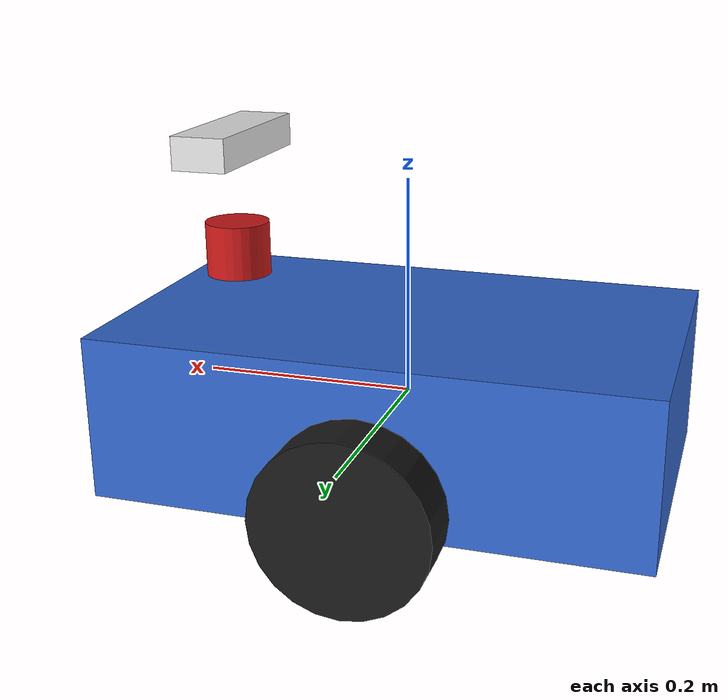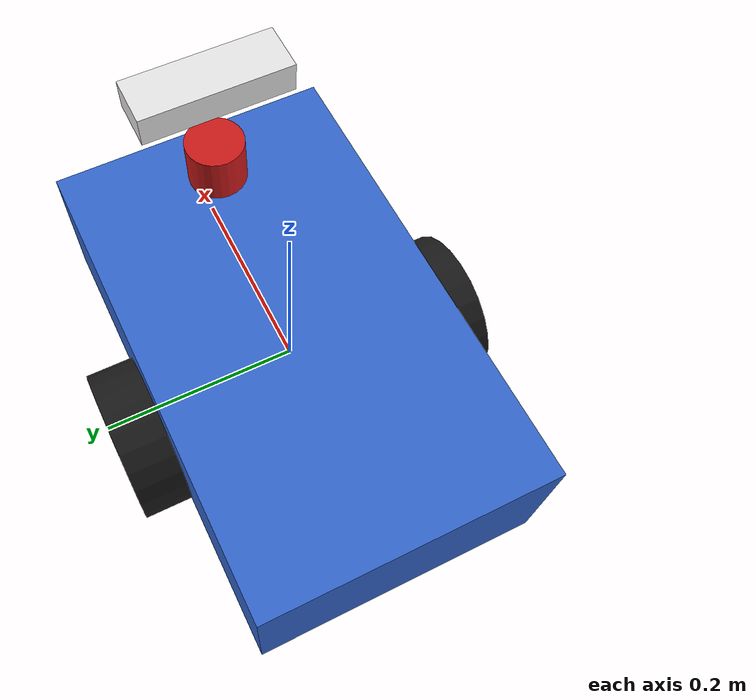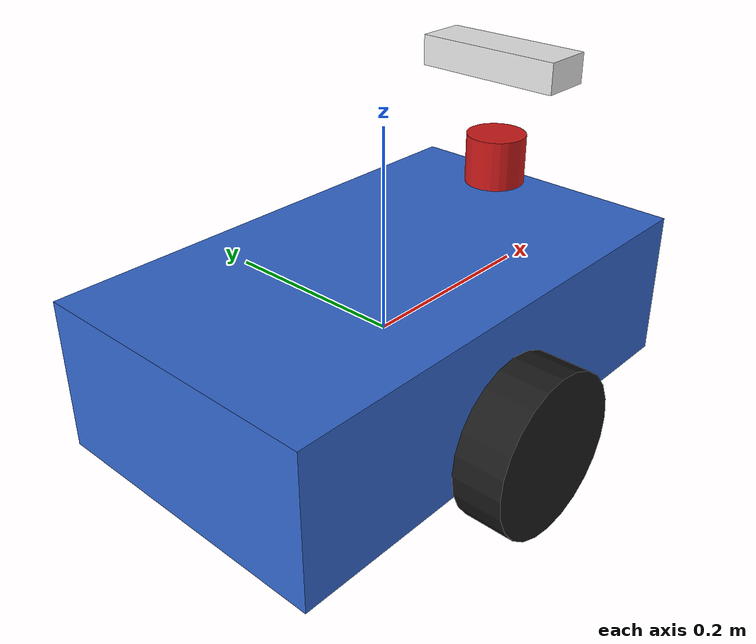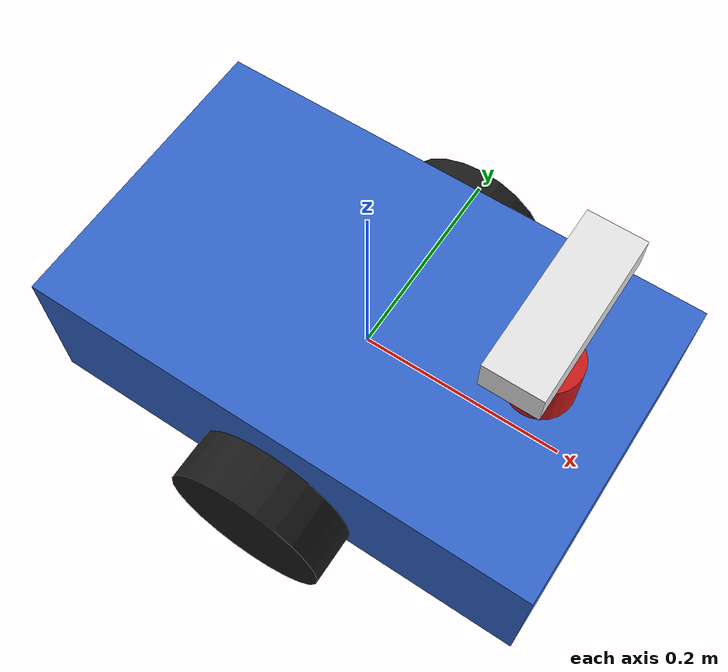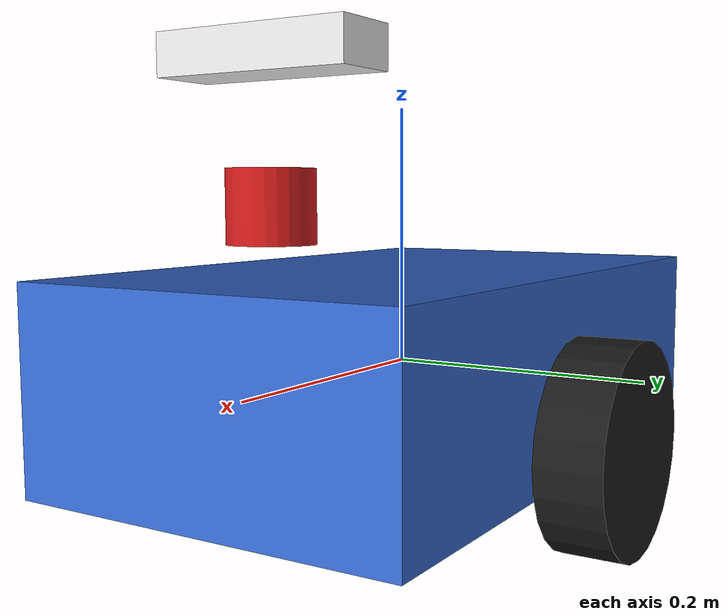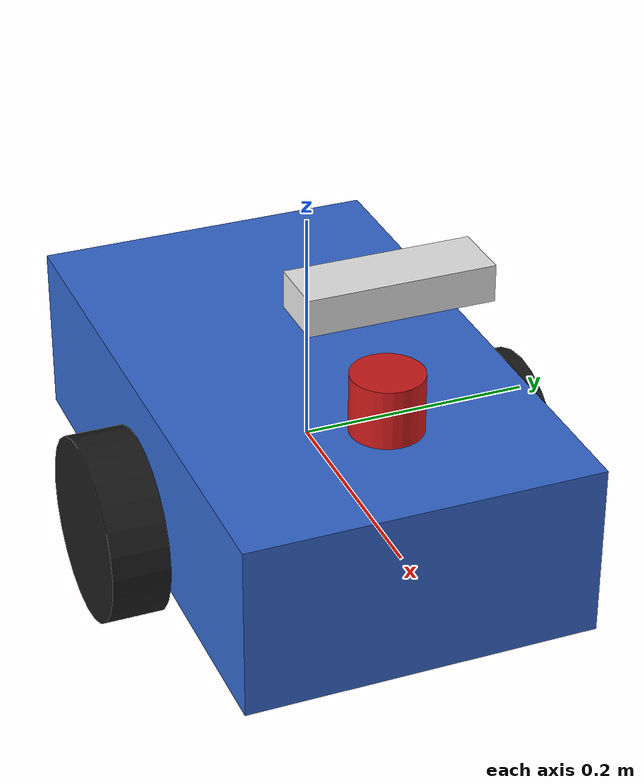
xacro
<?xml version="1.0"?>
<robot xmlns:xacro="http://www.ros.org/wiki/xacro" name="my_robot">
  <xacro:property name="base_length" value="0.5"/>
  <xacro:property name="base_width" value="0.3"/>
  <xacro:property name="base_height" value="0.15"/>
  <xacro:property name="wheel_radius" value="0.08"/>
  <xacro:property name="wheel_width" value="0.05"/>
  <xacro:property name="wheel_zoff" value="0.05"/>
  <xacro:property name="caster_radius" value="0.08"/>

  <material name="blue"><color rgba="0.2 0.4 0.8 1.0"/></material>
  <material name="black"><color rgba="0.1 0.1 0.1 1.0"/></material>
  <material name="white"><color rgba="0.9 0.9 0.9 1.0"/></material>
  <material name="red"><color rgba="0.8 0.1 0.1 1.0"/></material>
  <material name="grey"><color rgba="0.5 0.5 0.5 1.0"/></material>

  <link name="base_link">
    <visual><geometry><box size="${base_length} ${base_width} ${base_height}"/></geometry><material name="blue"/></visual>
    <collision><geometry><box size="${base_length} ${base_width} ${base_height}"/></geometry></collision>
    <inertial><mass value="15.0"/><inertia ixx="0.1" ixy="0.0" ixz="0.0" iyy="0.15" iyz="0.0" izz="0.2"/></inertial>
  </link>

  <!-- 驱动轮：绕 Y 轴旋转 -->
  <xacro:macro name="wheel" params="prefix reflect">
    <link name="${prefix}_wheel">
      <visual><origin xyz="0 0 0" rpy="${pi/2} 0 0"/><geometry><cylinder radius="${wheel_radius}" length="${wheel_width}"/></geometry><material name="black"/></visual>
      <collision><origin xyz="0 0 0" rpy="${pi/2} 0 0"/><geometry><cylinder radius="${wheel_radius}" length="${wheel_width}"/></geometry></collision>
      <inertial><origin xyz="0 0 0" rpy="${pi/2} 0 0"/><mass value="1.5"/><inertia ixx="0.005" ixy="0.0" ixz="0.0" iyy="0.005" iyz="0.0" izz="0.01"/></inertial>
    </link>
    <joint name="${prefix}_wheel_joint" type="continuous">
      <parent link="base_link"/><child link="${prefix}_wheel"/>
      <origin xyz="0 ${reflect*(base_width/2+0.025)} -${wheel_zoff}" rpy="0 0 0"/>
      <axis xyz="0 1 0"/>
    </joint>
    <gazebo reference="${prefix}_wheel"><mu1>1.0</mu1><mu2>1.0</mu2><material>Gazebo/Black</material></gazebo>
  </xacro:macro>
  <xacro:wheel prefix="left" reflect="1"/>
  <xacro:wheel prefix="right" reflect="-1"/>

  <!-- 万向轮 -->
  <link name="caster_wheel">
    <visual><geometry><sphere radius="${caster_radius}"/></geometry><material name="grey"/></visual>
    <collision><geometry><sphere radius="${caster_radius}"/></geometry></collision>
    <inertial><mass value="0.5"/><inertia ixx="0.001" ixy="0.0" ixz="0.0" iyy="0.001" iyz="0.0" izz="0.001"/></inertial>
  </link>
  <joint name="caster_joint" type="fixed">
    <parent link="base_link"/><child link="caster_wheel"/>
    <origin xyz="-${base_length/3} 0 -${wheel_zoff}" rpy="0 0 0"/>
  </joint>
  <gazebo reference="caster_wheel"><mu1>0.1</mu1><mu2>0.1</mu2></gazebo>

  <!-- LiDAR -->
  <link name="laser_link">
    <visual><geometry><cylinder radius="0.03" length="0.05"/></geometry><material name="red"/></visual>
    <collision><geometry><cylinder radius="0.03" length="0.05"/></geometry></collision>
    <inertial><mass value="0.1"/><inertia ixx="0.0001" ixy="0.0" ixz="0.0" iyy="0.0001" iyz="0.0" izz="0.0001"/></inertial>
  </link>
  <joint name="laser_joint" type="fixed">
    <parent link="base_link"/><child link="laser_link"/>
    <origin xyz="${base_length/3} 0 ${base_height/2+0.05}" rpy="0 0 0"/>
  </joint>
  <gazebo reference="laser_link">
    <sensor name="laser" type="ray">
      <always_on>true</always_on><visualize>true</visualize><update_rate>20</update_rate>
      <ray><scan><horizontal><samples>360</samples><resolution>1</resolution><min_angle>-3.14159</min_angle><max_angle>3.14159</max_angle></horizontal></scan><range><min>0.12</min><max>12.0</max><resolution>0.015</resolution></range></ray>
      <plugin name="laser_plugin" filename="libgazebo_ros_ray_sensor.so">
        <ros><remapping>~/out:=scan</remapping></ros>
        <output_type>sensor_msgs/LaserScan</output_type><frame_name>laser_link</frame_name>
      </plugin>
    </sensor>
  </gazebo>

  <!-- RGB-D 相机 -->
  <link name="camera_link">
    <visual><geometry><box size="0.05 0.15 0.03"/></geometry><material name="white"/></visual>
    <collision><geometry><box size="0.05 0.15 0.03"/></geometry></collision>
    <inertial><mass value="0.2"/><inertia ixx="0.001" ixy="0.0" ixz="0.0" iyy="0.001" iyz="0.0" izz="0.001"/></inertial>
  </link>
  <joint name="camera_joint" type="fixed">
    <parent link="base_link"/><child link="camera_link"/>
    <origin xyz="${base_length/3} 0 ${base_height/2+0.15}" rpy="0 0 0"/>
  </joint>
  <gazebo reference="camera_link">
    <sensor name="depth_camera" type="depth">
      <always_on>true</always_on><visualize>true</visualize><update_rate>30</update_rate>
      <camera><horizontal_fov>1.047</horizontal_fov><image><width>320</width><height>240</height><format>R8G8B8</format></image><clip><near>0.05</near><far>10.0</far></clip></camera>
      <plugin name="depth_plugin" filename="libgazebo_ros_camera.so">
        <imageTopicName>color/image_raw</imageTopicName>
        <cameraInfoTopicName>color/camera_info</cameraInfoTopicName>
        <depthImageTopicName>depth/image_rect_raw</depthImageTopicName>
        <depthImageCameraInfoTopicName>depth/camera_info</depthImageCameraInfoTopicName>
        <pointCloudTopicName>depth/color/points</pointCloudTopicName>
        <frameName>camera_link</frameName>
        <distortionK1>0</distortionK1><distortionK2>0</distortionK2><distortionK3>0</distortionK3>
        <distortionT1>0</distortionT1><distortionT2>0</distortionT2>
      </plugin>
    </sensor>
  </gazebo>

  <!-- IMU：修复！origin 设为 0 0 0，与 base_link 完全重合 -->
  <link name="imu_link">
    <visual><geometry><box size="0.02 0.02 0.02"/></geometry><material name="grey"/></visual>
    <inertial><mass value="0.01"/><inertia ixx="0.000001" ixy="0.0" ixz="0.0" iyy="0.000001" iyz="0.0" izz="0.000001"/></inertial>
  </link>
  <joint name="imu_joint" type="fixed">
    <parent link="base_link"/><child link="imu_link"/>
    <!-- 关键修复：xyz 全为 0，确保 IMU 与 base_link 重合 -->
    <origin xyz="0 0 0" rpy="0 0 0"/>
  </joint>
  <gazebo reference="imu_link">
    <sensor name="imu_sensor" type="imu">
      <always_on>true</always_on><visualize>false</visualize><update_rate>100</update_rate>
      <imu>
        <angular_velocity><x><noise type="gaussian"><mean>0.0</mean><stddev>0.01</stddev></noise></x><y><noise type="gaussian"><mean>0.0</mean><stddev>0.01</stddev></noise></y><z><noise type="gaussian"><mean>0.0</mean><stddev>0.01</stddev></noise></z></angular_velocity>
        <linear_acceleration><x><noise type="gaussian"><mean>0.0</mean><stddev>0.05</stddev></noise></x><y><noise type="gaussian"><mean>0.0</mean><stddev>0.05</stddev></noise></y><z><noise type="gaussian"><mean>0.0</mean><stddev>0.05</stddev></noise></z></linear_acceleration>
      </imu>
      <plugin name="imu_plugin" filename="libgazebo_ros_imu_sensor.so">
        <ros><remapping>~/out:=imu/data</remapping></ros><frame_name>imu_link</frame_name>
      </plugin>
    </sensor>
  </gazebo>

  <!-- 差速驱动插件 -->
  <gazebo>
    <plugin name="diff_drive" filename="libgazebo_ros_diff_drive.so">
      <ros><namespace>/</namespace><remapping>cmd_vel:=cmd_vel</remapping><remapping>odom:=odom</remapping></ros>
      <update_rate>50</update_rate><left_joint>left_wheel_joint</left_joint><right_joint>right_wheel_joint</right_joint>
      <wheel_separation>0.4</wheel_separation><wheel_diameter>0.16</wheel_diameter>
      <max_wheel_torque>20</max_wheel_torque><max_wheel_acceleration>1.0</max_wheel_acceleration>
      <publish_odom>true</publish_odom><publish_odom_tf>true</publish_odom_tf>
      <odometry_frame>odom</odometry_frame><robot_base_frame>base_link</robot_base_frame>
    </plugin>
  </gazebo>
  <gazebo reference="base_link"><material>Gazebo/Blue</material></gazebo>
</robot>
